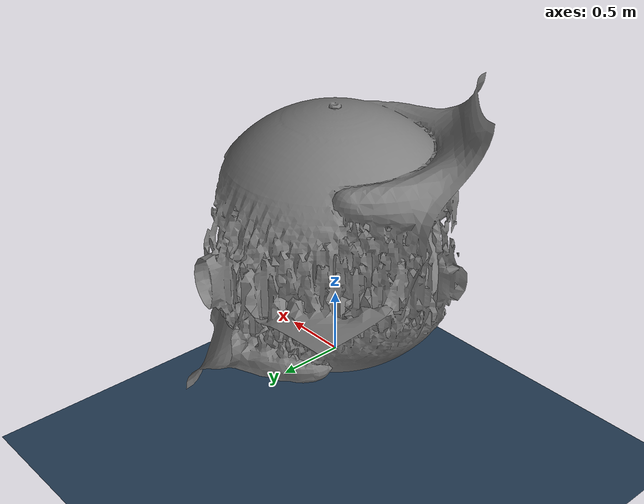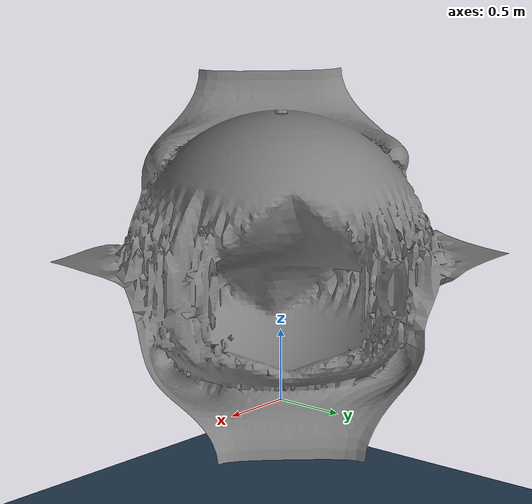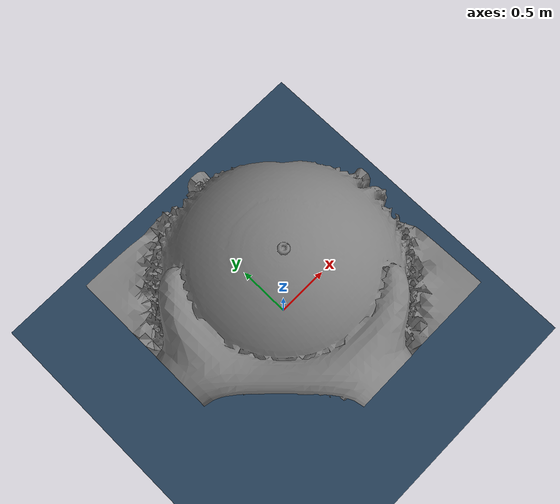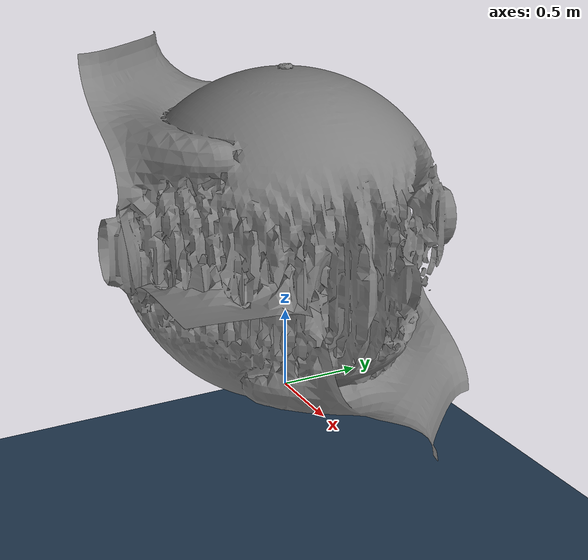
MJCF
<mujoco model="RM65-6F">
<compiler angle="radian"/>
<asset>
<texture name="grid" type="2d" builtin="checker" rgb1=".1 .2 .3" rgb2=".2 .3 .4" width="3000" height="3000"/>
<material name="grid" texture="grid" texrepeat="1 1" texuniform="true"/>
<material name="arm_material" rgba="0.8 0.6 0.4 1"/>
<mesh name="o3d" file="mesh.obj" scale="1 1 1"/>

</asset>
<worldbody>
<!--  添加光源  -->
<light diffuse=".5 .5 .5" pos="0 0 100" dir="0 0 -1"/>
<!--  地面  -->
<geom type="plane" size="10 10 1" pos="0 0 -1" material="grid"/>
<body pos="0 0 1" >

<geom type = "mesh" mesh='o3d'/>
</body>
</worldbody>
</mujoco>
